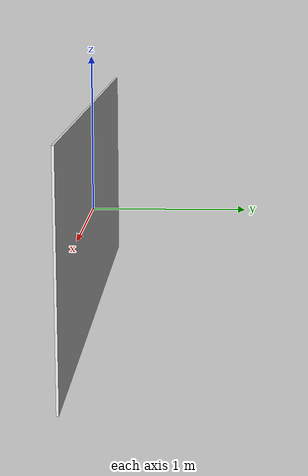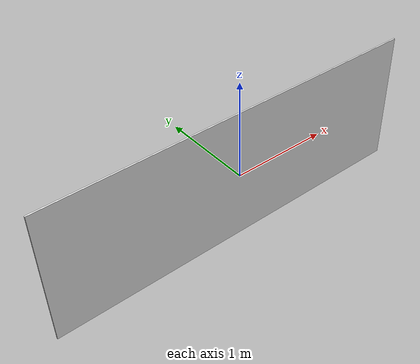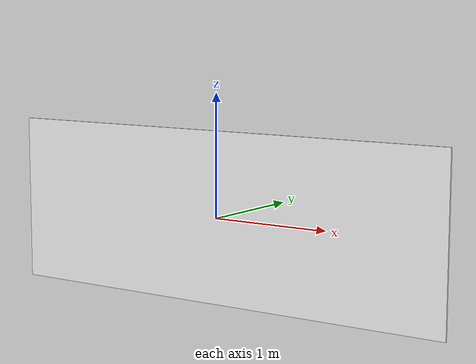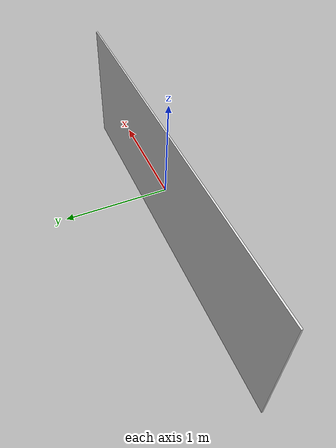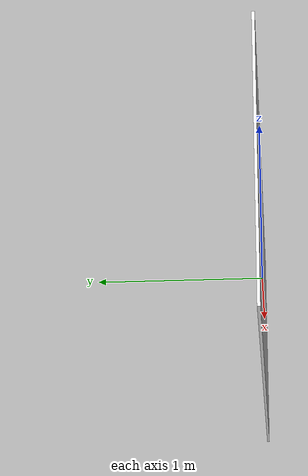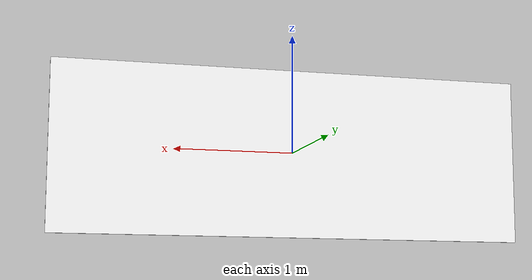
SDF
<?xml version="1.0"?>
<sdf version="1.7">

  <model name="side_wall">
    <link name="side_wall_link">
      <inertial>
        <mass>18.70</mass>
        <inertia>
          <ixx>0.79</ixx>
          <ixy>0</ixy>
          <ixz>0</ixz>
          <iyy>0.53</iyy>
          <iyz>0</iyz>
          <izz>1.2</izz>
        </inertia>
      </inertial>
      <visual name="bottom">
        <pose>0 0 0 0 0 0</pose>
        <geometry>
          <box>
            <size>4.0 0.015 1.4</size>
          </box>
        </geometry>
        <material>
          <diffuse>0.9 0.9 0.9 1.0</diffuse>
        </material>
      </visual>
      <collision name="bottom">
        <pose>0 0 0 0 0 0</pose>
        <geometry>
          <box>
            <size>4.0 0.015 1.4</size>
          </box>
        </geometry>
        <drake:proximity_properties>
          <drake:compliant_hydroelastic />
          <drake:hydroelastic_modulus>1.0e6</drake:hydroelastic_modulus>
        </drake:proximity_properties>
      </collision>
    </link>
    <frame name="side_wall_center">
      <pose relative_to="side_wall_link">-2.0 0 -0.7 0 0 0</pose>
    </frame>
  </model>
</sdf>
